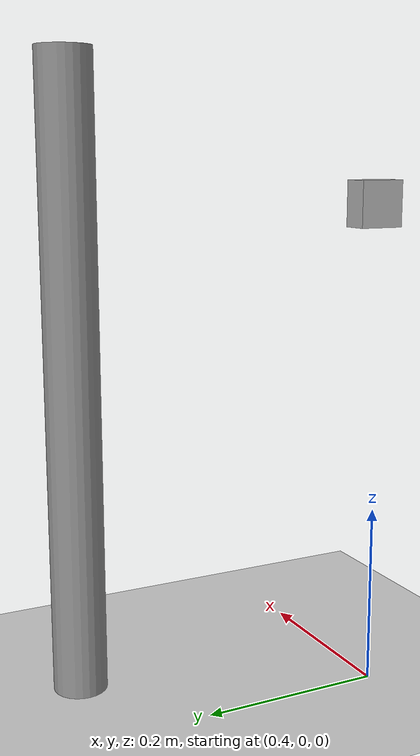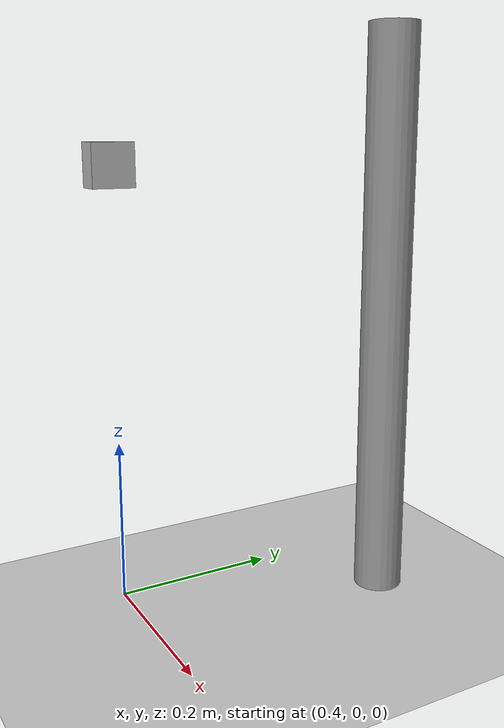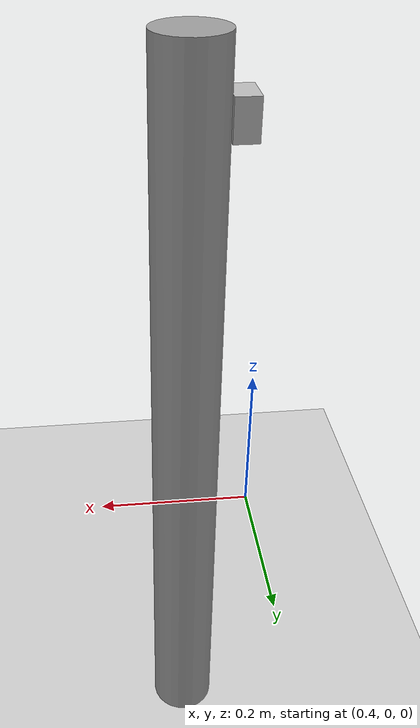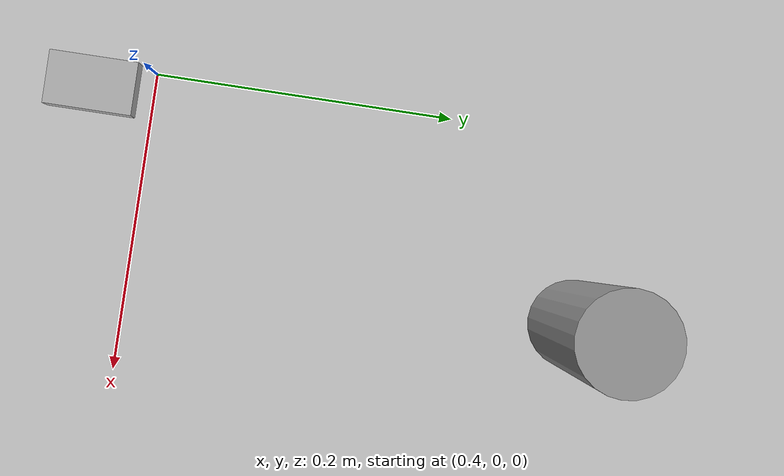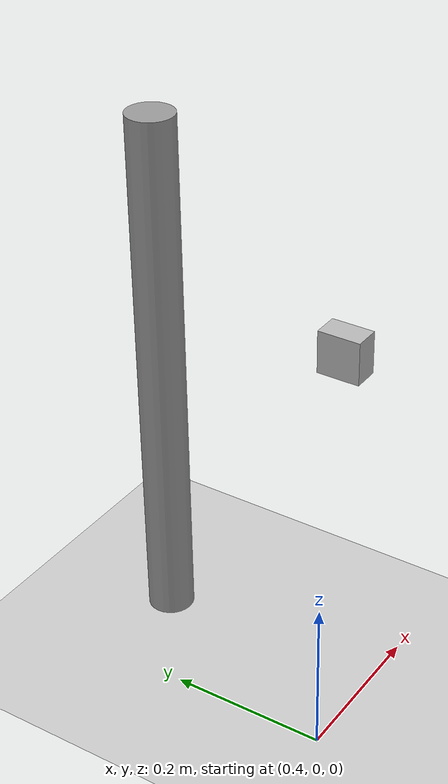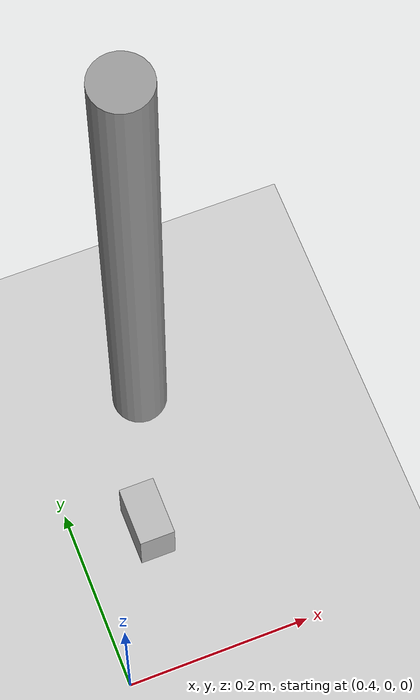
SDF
<sdf version="1.7">
 <world name="default">
  <plugin name="ros_link_attacher_plugin" filename="libgazebo_ros_link_attacher.so"/>
  <light name="sun" type="directional">
   <pose>0 0 10 0 -0 0</pose>
   <diffuse>0.8 0.8 0.8 1</diffuse>
   <specular>0.2 0.2 0.2 1</specular>
   <attenuation>
    <range>1000</range>
    <constant>0.9</constant>
    <linear>0.01</linear>
    <quadratic>0.001</quadratic>
   </attenuation>
   <direction>-0.5 0.1 -0.9</direction>
   <spot><inner_angle>0</inner_angle><outer_angle>0</outer_angle><falloff>0</falloff></spot>
  </light>
  <model name="ground_plane">
   <static>1</static>
   <link name="link">
    <collision name="collision">
     <geometry><plane><normal>0 0 1</normal><size>100 100</size></plane></geometry>
     <surface>
      <contact><collide_bitmask>65535</collide_bitmask></contact>
      <friction><ode><mu>100</mu><mu2>50</mu2></ode></friction>
     </surface>
    </collision>
    <visual name="visual">
     <cast_shadows>0</cast_shadows>
     <geometry><plane><normal>0 0 1</normal><size>100 100</size></plane></geometry>
     <material>
      <script><uri>file://media/materials/scripts/gazebo.material</uri><name>Gazebo/Grey</name></script>
     </material>
    </visual>
   </link>
  </model>
  <gravity>0 0 -9.8</gravity>
  <magnetic_field>6e-06 2.3e-05 -4.2e-05</magnetic_field>
  <atmosphere type="adiabatic"/>
  <physics type="ode">
   <max_step_size>0.001</max_step_size>
   <real_time_factor>1</real_time_factor>
   <real_time_update_rate>1000</real_time_update_rate>
  </physics>
  <scene><ambient>0.4 0.4 0.4 1</ambient><background>0.7 0.7 0.7 1</background><shadows>1</shadows></scene>
  <spherical_coordinates>
   <surface_model>EARTH_WGS84</surface_model>
   <latitude_deg>0</latitude_deg>
   <longitude_deg>0</longitude_deg>
   <elevation>0</elevation>
   <heading_deg>0</heading_deg>
  </spherical_coordinates>
  <model name="depth_camera_model">
   <static>1</static>
   <pose>0.426685 -0.009627 0.533417 0 1.57 0</pose>
   <link name="depth_camera_link">
    <visual name="depth_camera_body"><geometry><box><size>0.05 0.05 0.03</size></box></geometry></visual>
    <sensor name="depth_camera" type="depth">
     <always_on>1</always_on>
     <update_rate>30</update_rate>
     <camera>
      <horizontal_fov>1.047</horizontal_fov>
      <image><width>640</width><height>480</height><format>R8G8B8</format></image>
      <clip><near>0.1</near><far>3</far></clip>
     </camera>
     <visualize>1</visualize>
     <plugin name="camera_controller" filename="libgazebo_ros_openni_kinect.so">
      <cameraName>depth_camera</cameraName>
      <alwaysOn>1</alwaysOn>
      <updateRate>30.0</updateRate>
      <imageTopicName>/camera/color/image_raw</imageTopicName>
      <cameraInfoTopicName>/camera/color/camera_info</cameraInfoTopicName>
      <depthImageTopicName>/camera/depth/image_raw</depthImageTopicName>
      <pointCloudTopicName>/camera/depth/points</pointCloudTopicName>
      <frameName>depth_camera_link</frameName>
     </plugin>
    </sensor>
   </link>
  </model>
  <model name="unit_cylinder">
   <pose>0.524315 0.301134 0.345726 -1e-06 -0 -0.001803</pose>
   <link name="link">
    <inertial>
     <mass>1</mass>
     <inertia><ixx>0.145833</ixx><ixy>0</ixy><ixz>0</ixz><iyy>0.145833</iyy><iyz>0</iyz><izz>0.125</izz></inertia>
    </inertial>
    <collision name="collision">
     <geometry><cylinder><radius>0.029866</radius><length>0.691453</length></cylinder></geometry>
    </collision>
    <visual name="visual">
     <geometry><cylinder><radius>0.029866</radius><length>0.691453</length></cylinder></geometry>
     <material>
      <script><name>Gazebo/Grey</name><uri>file://media/materials/scripts/gazebo.material</uri></script>
     </material>
    </visual>
   </link>
  </model>
 </world>
</sdf>
